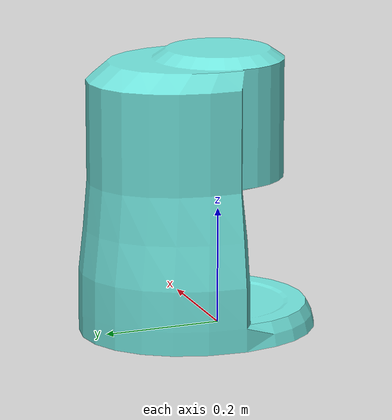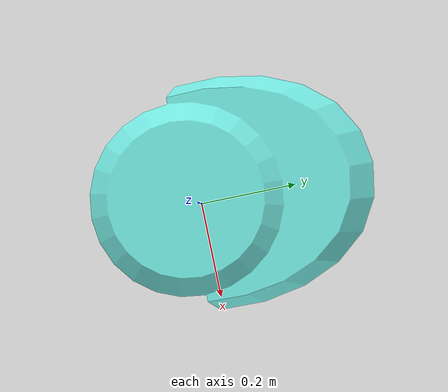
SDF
<?xml version='1.0'?>
<sdf version="1.4">
	<model name="coffee_machine">
		<static>1</static>
		<link name="link">
			<visual name="mesh">
				<geometry>
					<mesh>
						<uri>model://meshes/coffee_machine.dae</uri>
					</mesh>
				</geometry>
			</visual>
			<collision name="base_collider">
				<pose>0 0 0.02 0 0 0</pose>
				<geometry>
					<box>
						<size>0.34 0.4 0.04</size>
					</box>
				</geometry>
			</collision>
			<collision name="top_collider">
				<pose>0 0 0.36 0 0 0</pose>
				<geometry>
					<cylinder>
						<radius>0.11</radius>
						<length>0.2</length>
					</cylinder>
				</geometry>
			</collision>
		</link>
	</model>
</sdf>
